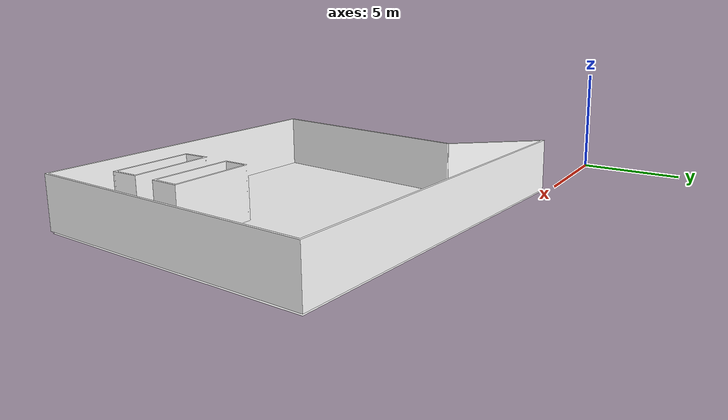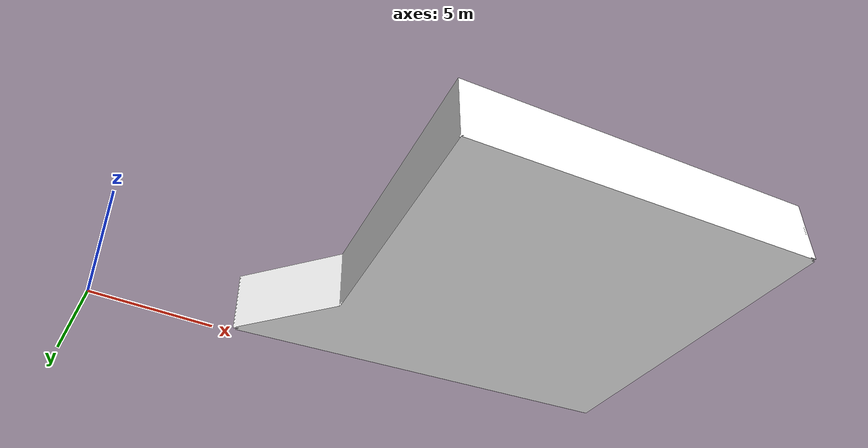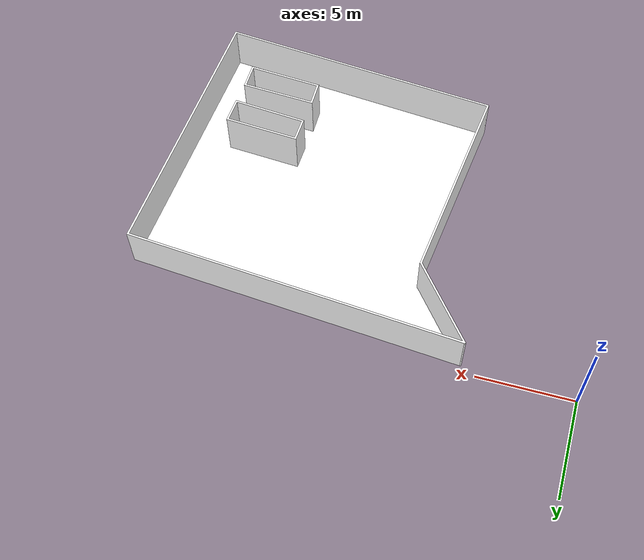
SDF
<?xml version='1.0' encoding='utf-8'?>
<sdf version="1.7">
  <model name="yondu_warehouse_yondu">
    <static>true</static>
    <link name="floor_1">
      <visual name="visual">
        <geometry>
          <mesh>
            <uri>model://yondu_warehouse_yondu/meshes/floor_1.obj</uri>
          </mesh>
        </geometry>
        <material>
          <diffuse>1.0 1.0 1.0</diffuse>
          <specular>0.1 0.1 0.1</specular>
          <pbr>
            <metal>
              <metalness>0.0</metalness>
              <albedo_map>model://yondu_warehouse_yondu/meshes/blue_linoleum.png</albedo_map>
            </metal>
          </pbr>
          <script>
            <uri>model://yondu_warehouse_yondu/meshes/</uri>
            <name>floor_1_Diffuse</name>
          </script>
        </material>
      </visual>
      <collision name="collision">
        <geometry>
          <mesh>
            <uri>model://yondu_warehouse_yondu/meshes/floor_1.obj</uri>
          </mesh>
        </geometry>
        <surface>
          <contact>
            <collide_bitmask>0x01</collide_bitmask>
          </contact>
        </surface>
      </collision>
    </link>
    <link name="wall_1">
      <visual name="wall_1">
        <geometry>
          <mesh>
            <uri>model://yondu_warehouse_yondu/meshes/wall_1.obj</uri>
          </mesh>
        </geometry>
        <transparency>0.0</transparency>
        <material>
          <diffuse>1.0 1.0 1.0</diffuse>
          <specular>0.1 0.1 0.1</specular>
          <pbr>
            <metal>
              <metalness>0.0</metalness>
              <albedo_map>model://yondu_warehouse_yondu/meshes/default.png</albedo_map>
            </metal>
          </pbr>
          <script>
            <uri>model://yondu_warehouse_yondu/meshes/</uri>
            <name>wall_1_Diffuse</name>
          </script>
        </material>
      </visual>
      <collision name="collision">
        <geometry>
          <mesh>
            <uri>model://yondu_warehouse_yondu/meshes/wall_1.obj</uri>
          </mesh>
        </geometry>
        <surface>
          <contact>
            <collide_bitmask>0x01</collide_bitmask>
          </contact>
        </surface>
      </collision>
      <pose>5.744842791026957 -15.83881460376728 0 0 0 0</pose>
    </link>
  </model>
</sdf>
